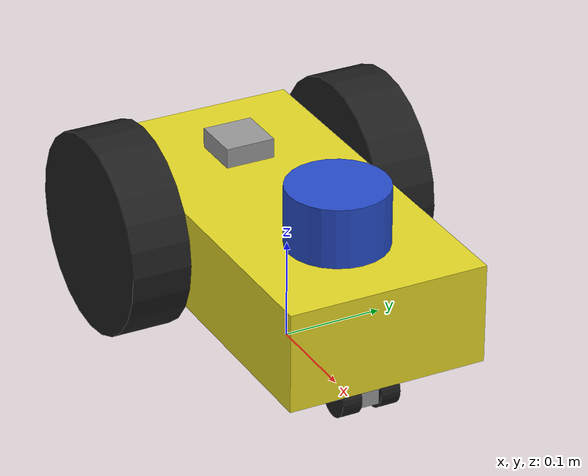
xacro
<?xml version="1.0"?>
<robot xmlns:xacro="http://ros.org/wiki/xacro" name="latty_chassis">

  <!-- Parameters -->
  <xacro:property name="wheel_radius" value="0.1"/>
  <xacro:property name="wheel_length" value="0.06"/>
  <xacro:property name="front_wheel_radius" value="0.02"/>
  <xacro:property name="front_wheel_length" value="0.02"/>
  <xacro:property name="wheelbase" value="0.25"/>
  <xacro:property name="lidar_radius" value="0.05"/>
  <xacro:property name="lidar_length" value="0.1"/>

  <link name="base_link"/>

  <!-- Chassis -->
  <link name="chassis">

    <inertial>
      <origin xyz="0 0 0.05" rpy="0 0 0"/>
      <mass value="30.0"/>
      <inertia ixx="1.25" iyy="4.25" izz="5.0" ixy="0" ixz="0" iyz="0"/>
    </inertial>

    <visual>
      <origin xyz="0 0 0.1" rpy="0 0 0"/>
      <geometry>
        <box size="0.4 0.2 0.1"/>
      </geometry>
    </visual>

    <collision>
      <origin xyz="0 0 0.1" rpy="0 0 0"/>
      <geometry>
        <box size="0.4 0.2 0.1"/>
      </geometry>
    </collision>
  </link>

  <!-- Knuckle -->
  <link name="steer_knuckle">

    <inertial>
      <origin xyz="0 0 0" rpy="0 0 0"/>
      <mass value="0.5"/>
      <inertia ixx="0.001" iyy="0.001" izz="0.001" ixy="0" ixz="0" iyz="0"/>
    </inertial>

    <visual>
      <origin xyz="0 0 0" rpy="0 0 0"/>
      <geometry>
        <box size="0.03 0.02 0.04"/>
      </geometry>
    </visual>

    <collision>
      <origin xyz="0 0 0" rpy="0 0 0"/>
      <geometry>
        <box size="0.03 0.02 0.04"/>
      </geometry>
    </collision>

  </link>

  <!-- Front left wheel -->
  <link name="front_left_wheel">

    <inertial>
      <mass value="1.5"/>
      <inertia ixx="0.000388" iyy="0.000388" izz="0.000675" ixy="0.0" ixz="0.0" iyz="0.0"/>
    </inertial>

    <visual>
      <origin xyz="0 0 0" rpy="0 1.5707 1.5707"/>
      <geometry>
        <cylinder length="${front_wheel_length}" radius="${front_wheel_radius}"/>
      </geometry>
    </visual>

    <collision>
      <origin xyz="0 0 0" rpy="0 1.5707 1.5707"/>
      <geometry>
        <cylinder length="${front_wheel_length}" radius="${front_wheel_radius}"/>
      </geometry>
    </collision>

  </link>

  <!-- Front right wheel -->
  <link name="front_right_wheel">

    <inertial>
      <mass value="1.5"/>
      <inertia ixx="0.000388" iyy="0.000388" izz="0.000675" ixy="0.0" ixz="0.0" iyz="0.0"/>
    </inertial>

    <visual>
      <origin xyz="0 0 0" rpy="0 1.5707 1.5707"/>
      <geometry>
        <cylinder length="${front_wheel_length}" radius="${front_wheel_radius}"/>
      </geometry>
    </visual>

    <collision>
      <origin xyz="0 0 0" rpy="0 1.5707 1.5707"/>
      <geometry>
        <cylinder length="${front_wheel_length}" radius="${front_wheel_radius}"/>
      </geometry>
    </collision>

  </link>

  <!-- Rear Wheels -->
  <link name="left_wheel">

    <inertial>
      <mass value="5.0"/>
      <inertia ixx="0.0143" iyy="0.0143" izz="0.025" ixy="0.0" ixz="0.0" iyz="0.0"/>
    </inertial>

    <visual>
      <origin xyz="0 0 0" rpy="0 1.5707 1.5707"/>
      <geometry>
        <cylinder length="${wheel_length}" radius="${wheel_radius}"/>
      </geometry>
    </visual>

    <collision>
      <origin xyz="0 0 0" rpy="0 1.5707 1.5707"/>
      <geometry>
        <cylinder length="${wheel_length}" radius="${wheel_radius}"/>
      </geometry>
    </collision>

  </link>

  <link name="right_wheel">

    <inertial>
      <mass value="5.0"/>
      <inertia ixx="0.0143" iyy="0.0143" izz="0.025" ixy="0.0" ixz="0.0" iyz="0.0"/>
    </inertial>

    <visual>
      <origin xyz="0 0 0" rpy="0 1.5707 1.5707"/>
      <geometry>
        <cylinder length="${wheel_length}" radius="${wheel_radius}"/>
      </geometry>
    </visual>

    <collision>
      <origin xyz="0 0 0" rpy="0 1.5707 1.5707"/>
      <geometry>
        <cylinder length="${wheel_length}" radius="${wheel_radius}"/>
      </geometry>
    </collision>

  </link>

  <!-- IMU -->
  <link name="imu_link">

    <collision>
      <origin xyz="0 0 0" rpy="0 0 0"/>
      <geometry>
        <box size="0.02 0.02 0.01"/>
      </geometry>
    </collision>

    <inertial>
      <origin xyz="0 0 0" rpy="0 0 0"/>
      <mass value="0.01"/>
      <inertia
        ixx="2.4e-05" iyy="2.4e-05" izz="4.2e-05"
        ixy="0.0" ixz="0.0" iyz="0.0"/>
    </inertial>

    <visual>
      <origin xyz="0 0 0" rpy="0 0 0"/>
      <geometry>
        <box size="0.05 0.05 0.02"/>
      </geometry>
    </visual>
  </link>

  <!-- Lidar Link -->

  <link name="lidar_link">
    <collision>
      <origin xyz="0 0 0" rpy="0 0 0"/>
      <geometry>
        <cylinder length="${lidar_length}" radius="${lidar_radius}"/>
      </geometry>
    </collision>

    <inertial>
      <origin xyz="0 0 0" rpy="0 0 0"/>
      <mass value="0.01"/>
      <inertia
        ixx="2.2e-05" iyy="2.2e-05" izz="4.5e-06"
        ixy="0.0" ixz="0.0" iyz="0.0"/>
    </inertial>

    <visual>
      <origin xyz="0 0 0" rpy="0 0 0"/>
      <geometry>
        <cylinder length="${lidar_length}" radius="${lidar_radius}"/>
      </geometry>
    </visual>

  </link>

  <!-- Gazebo material overrides -->
  <gazebo reference="chassis">
    <material>Gazebo/Yellow</material>
  </gazebo>

  <xacro:property name="frontWheel_mu1" value="0.5"/>
  <xacro:property name="frontWheel_mu2" value="0.1"/>
  <xacro:property name="rearWheel_mu1" value="1.0"/>
  <xacro:property name="rearWheel_mu2" value="0.5"/>
  <xacro:property name="fdir1_q" value="0 0 1"/>

  <gazebo reference="left_wheel">
    <material>Gazebo/Black</material>
    <!-- make lateral (mu1) big, longitudinal (mu2) moderate -->
    <fdir1>${fdir1_q}</fdir1>
    <mu1>${rearWheel_mu1}</mu1>    <!-- lateral -->
    <mu2>${rearWheel_mu2}</mu2>    <!-- longitudinal -->
    <kp>1e6</kp>
    <kd>1.0</kd>
  </gazebo>

  <gazebo reference="right_wheel">
    <material>Gazebo/Black</material>
    <fdir1>${fdir1_q}</fdir1>
    <mu1>${rearWheel_mu1}</mu1>    <!-- lateral -->
    <mu2>${rearWheel_mu2}</mu2>    <!-- longitudinal -->
    <kp>1e6</kp>
    <kd>1.0</kd>
  </gazebo>

  <gazebo reference="steer_knuckle">
    <material>Gazebo/Grey</material>
    <mu1>0.1</mu1>    <!-- Low friction coefficient -->
    <mu2>0.1</mu2>    <!-- Low friction coefficient -->
  </gazebo>

  <gazebo reference="front_left_wheel">
    <material>Gazebo/Black</material>
    <fdir1>${fdir1_q}</fdir1>
    <mu1>${frontWheel_mu1}</mu1>    <!-- lateral -->
    <mu2>${frontWheel_mu2}</mu2>    <!-- longitudinal -->
    <kp>1e6</kp>
    <kd>1.0</kd>
  </gazebo>

  <gazebo reference="front_right_wheel">
    <material>Gazebo/Black</material>
    <fdir1>${fdir1_q}</fdir1>
    <mu1>${frontWheel_mu1}</mu1>    <!-- lateral -->
    <mu2>${frontWheel_mu2}</mu2>    <!-- longitudinal -->
    <kp>1e6</kp>
    <kd>1.0</kd>
  </gazebo>

  <gazebo reference="imu_link">
    <material>Gazebo/Grey</material>
  </gazebo>

  <gazebo reference="lidar_link">
    <material>Gazebo/Blue</material>
  </gazebo>

  <!-- Joints -->

  <joint name="base_to_chassis" type="fixed">
    <parent link="base_link"/>
    <child link="chassis"/>
    <!-- Rotate chassis 180 deg around z if needed -->
    <origin xyz="0 0 0" rpy="0 0 3.14159"/>
  </joint>

  <joint name="imu_joint" type="fixed">
    <parent link="base_link"/>
    <child link="imu_link"/>
    <origin xyz="-0.1 0 0.16" rpy="0 0 0"/>
  </joint>

  <joint name="lidar_joint" type="fixed">
    <parent link="base_link"/>
    <child link="lidar_link"/>
    <origin xyz="0.1 0 0.16" rpy="0 0 0"/>
  </joint>

  <joint name="front_steer_joint" type="revolute">
    <parent link="chassis"/>
    <child link="steer_knuckle"/>
    <origin xyz="-0.15 0 0.03" rpy="0 0 0"/>
    <axis xyz="0 0 1"/>
    <limit lower="-0.5236" upper="0.5236" effort="10" velocity="3"/>
    <dynamics damping="0.5"/>
  </joint>

  <!-- Front wheel joints attached to knuckle -->
  <joint name="front_left_wheel_joint" type="continuous">
    <parent link="steer_knuckle"/>
    <child link="front_left_wheel"/>
    <origin xyz="0 0.02 -0.01" rpy="0 0 0"/>
    <axis xyz="0 -1 0"/>
    <dynamics damping="0.1" friction="0.05"/>
  </joint>

  <joint name="front_right_wheel_joint" type="continuous">
    <parent link="steer_knuckle"/>
    <child link="front_right_wheel"/>
    <origin xyz="0 -0.02 -0.01" rpy="0 0 0"/>
    <axis xyz="0 -1 0"/>
    <dynamics damping="0.1" friction="0.05"/>
  </joint>

  <!-- Rear wheel joints -->
  <joint name="left_wheel_joint" type="continuous">
    <parent link="chassis"/>
    <child link="left_wheel"/>
    <origin xyz="0.1 0.13 ${wheel_radius}" rpy="0 0 0"/>
    <axis xyz="0 -1 0"/>
    <dynamics damping="5.0" friction="0.5"/>
  </joint>

  <joint name="right_wheel_joint" type="continuous">
    <parent link="chassis"/>
    <child link="right_wheel"/>
    <origin xyz="0.1 -0.13 ${wheel_radius}" rpy="0 0 0"/>
    <axis xyz="0 -1 0"/>
    <dynamics damping="5.0" friction="0.5"/>
  </joint>

  <!-- ros2_control hardware definition -->
  <ros2_control name="GazeboSystem" type="system">
    <hardware>
      <plugin>gazebo_ros2_control/GazeboSystem</plugin>
    </hardware>

    <joint name="front_steer_joint">
      <command_interface name="position"/>
      <state_interface name="position"/>
    </joint>

    <joint name="front_left_wheel_joint">
      <state_interface name="position"/>
      <state_interface name="velocity"/>
    </joint>

    <joint name="front_right_wheel_joint">
      <state_interface name="position"/>
      <state_interface name="velocity"/>
    </joint>

    <joint name="left_wheel_joint">
      <command_interface name="velocity"/>
      <state_interface name="position"/>
      <state_interface name="velocity"/>
    </joint>

    <joint name="right_wheel_joint">
      <command_interface name="velocity"/>
      <state_interface name="position"/>
      <state_interface name="velocity"/>
    </joint>
  </ros2_control>

  <xacro:property name="noise" value="0.005"/>
  <xacro:property name="drift" value="1e-6"/>

  <gazebo>
    <plugin name="gazebo_ros2_control" filename="libgazebo_ros2_control.so">
      <parameters>/home/pranayt/ros2_ws/latty/install/latty_chassis/share/latty_chassis/config/latty_controllers.yaml</parameters>
    </plugin>
  </gazebo>

  <gazebo reference="imu_link">
    <sensor name="imu_sensor" type="imu">
      <always_on>true</always_on>
      <update_rate>100.0</update_rate>      <!-- 100 Hz IMU -->
      <visualize>true</visualize>

      <imu>
        <!-- Gyroscope noise (angular velocity in rad/s) -->
        <angular_velocity>
          <x>
            <noise type="gaussian">
              <mean>0.0</mean>
              <stddev>${noise}</stddev>              <!-- noise strength -->
              <bias_mean>0.0</bias_mean>
              <bias_stddev>${drift}</bias_stddev>              <!-- slow drift -->
            </noise>
          </x>
          <y>
            <noise type="gaussian">
              <mean>0.0</mean>
              <stddev>${noise}</stddev>
              <bias_mean>0.0</bias_mean>
              <bias_stddev>${drift}</bias_stddev>
            </noise>
          </y>
          <z>
            <noise type="gaussian">
              <mean>0.0</mean>
              <stddev>${noise}</stddev>
              <bias_mean>0.0</bias_mean>
              <bias_stddev>${drift}</bias_stddev>
            </noise>
          </z>
        </angular_velocity>

        <!-- Accelerometer noise (linear acceleration in m/s^2) -->
        <linear_acceleration>
          <x>
            <noise type="gaussian">
              <mean>0.0</mean>
              <stddev>${noise}</stddev>              <!-- higher noise -->
              <bias_mean>0.0</bias_mean>
              <bias_stddev>${drift}</bias_stddev>
            </noise>
          </x>
          <y>
            <noise type="gaussian">
              <mean>0.0</mean>
              <stddev>${noise}</stddev>
              <bias_mean>0.0</bias_mean>
              <bias_stddev>${drift}</bias_stddev>
            </noise>
          </y>
          <z>
            <noise type="gaussian">
              <mean>0.0</mean>
              <stddev>${noise}</stddev>
              <bias_mean>0.0</bias_mean>
              <bias_stddev>${drift}</bias_stddev>
            </noise>
          </z>
        </linear_acceleration>
      </imu>

      <!-- ROS plugin to publish /imu -->
      <plugin name="imu_plugin" filename="libgazebo_ros_imu_sensor.so">
        <ros>
          <namespace>/</namespace>
          <remappings>~/out:=/imu</remappings>
        </ros>
        <frame_name>imu_link</frame_name>
      </plugin>
    </sensor>
  </gazebo>

  <gazebo reference="lidar_link">
    <sensor name="laser" type="ray">
      <pose>0 0 0 0 0 0</pose>
      <always_on>true</always_on>
      <visualize>true</visualize>
      <update_rate>100</update_rate>

      <ray>
        <scan>
          <horizontal>
            <samples>360</samples>
            <resolution>1</resolution>
            <min_angle>-3.14</min_angle>
            <max_angle>3.14</max_angle>
          </horizontal>
        </scan>

        <range>
          <min>0.3</min>
          <max>12.0</max>
          <resolution>0.01</resolution>
        </range>

        <noise>
          <type>gaussian</type>
          <mean>0.0</mean>
          <stddev>0.01</stddev>
        </noise>
      </ray>

      <plugin name="gazebo_ros_laser" filename="libgazebo_ros_ray_sensor.so">
        <ros>
          <namespace>/</namespace>
          <remapping>~/out:=/scan</remapping>
        </ros>
        <output_type>sensor_msgs/LaserScan</output_type>
        <frame_name>lidar_link</frame_name>
      </plugin>
    </sensor>
  </gazebo>

</robot>
